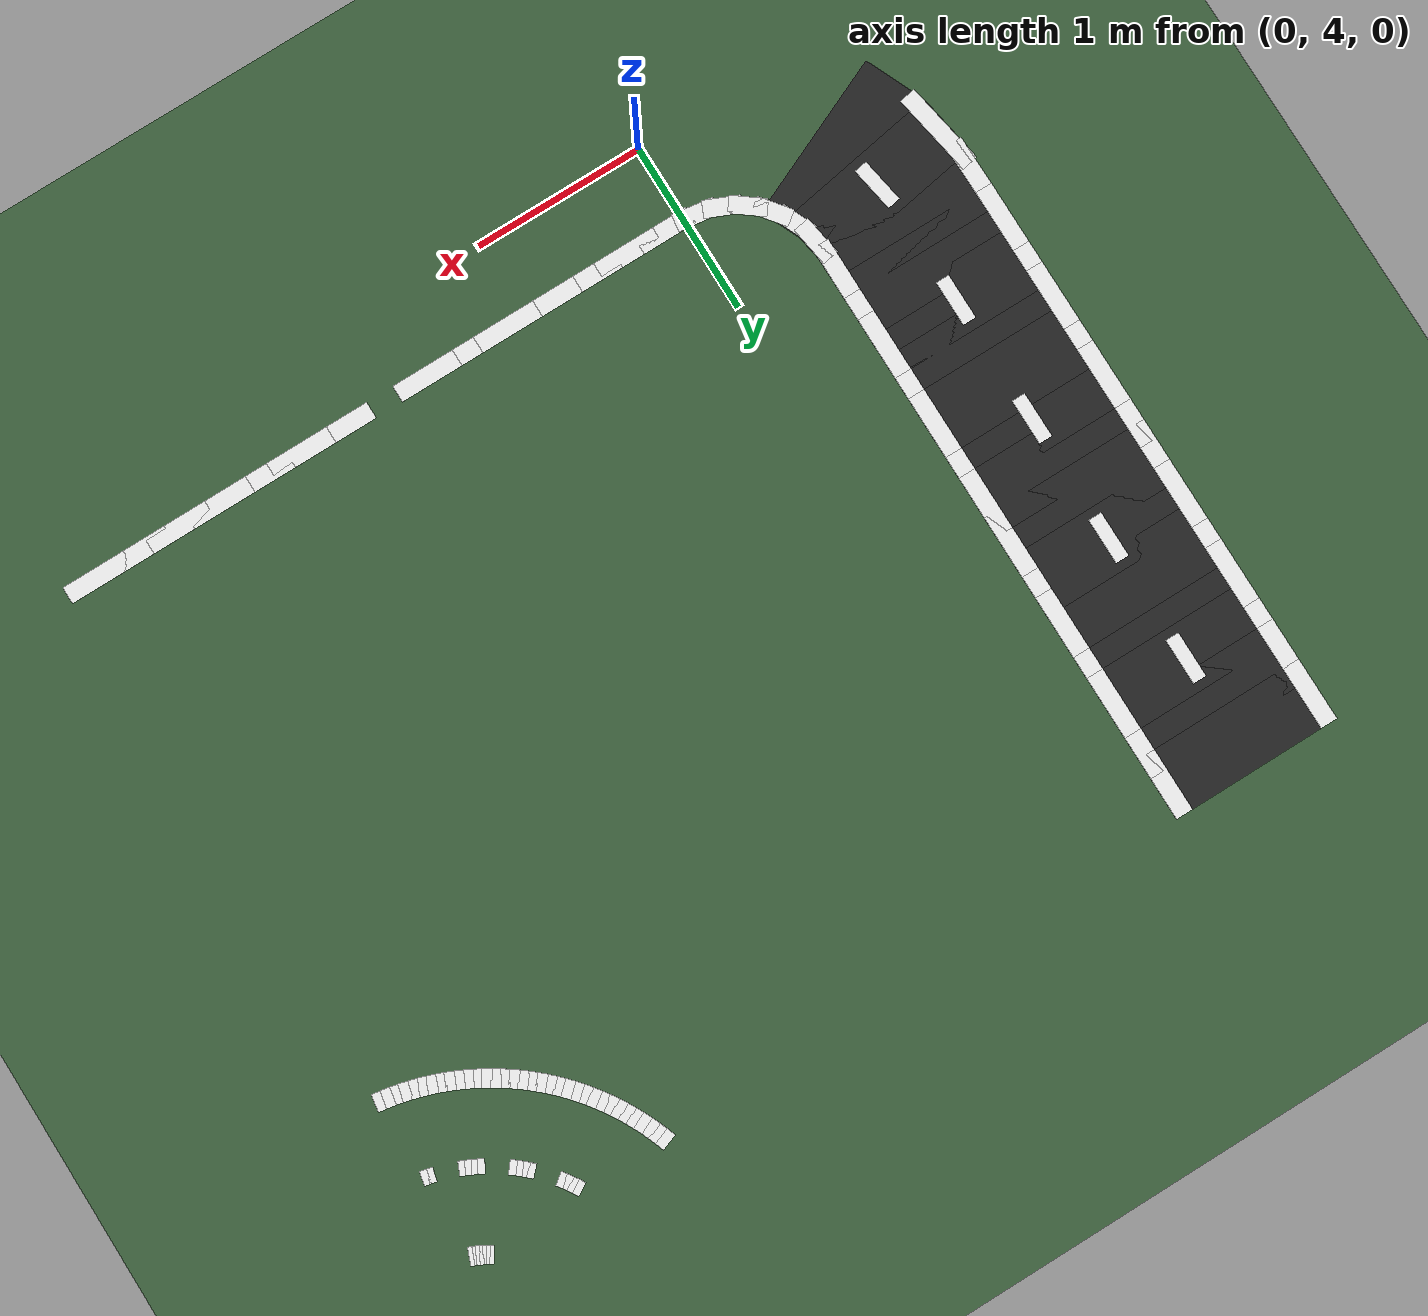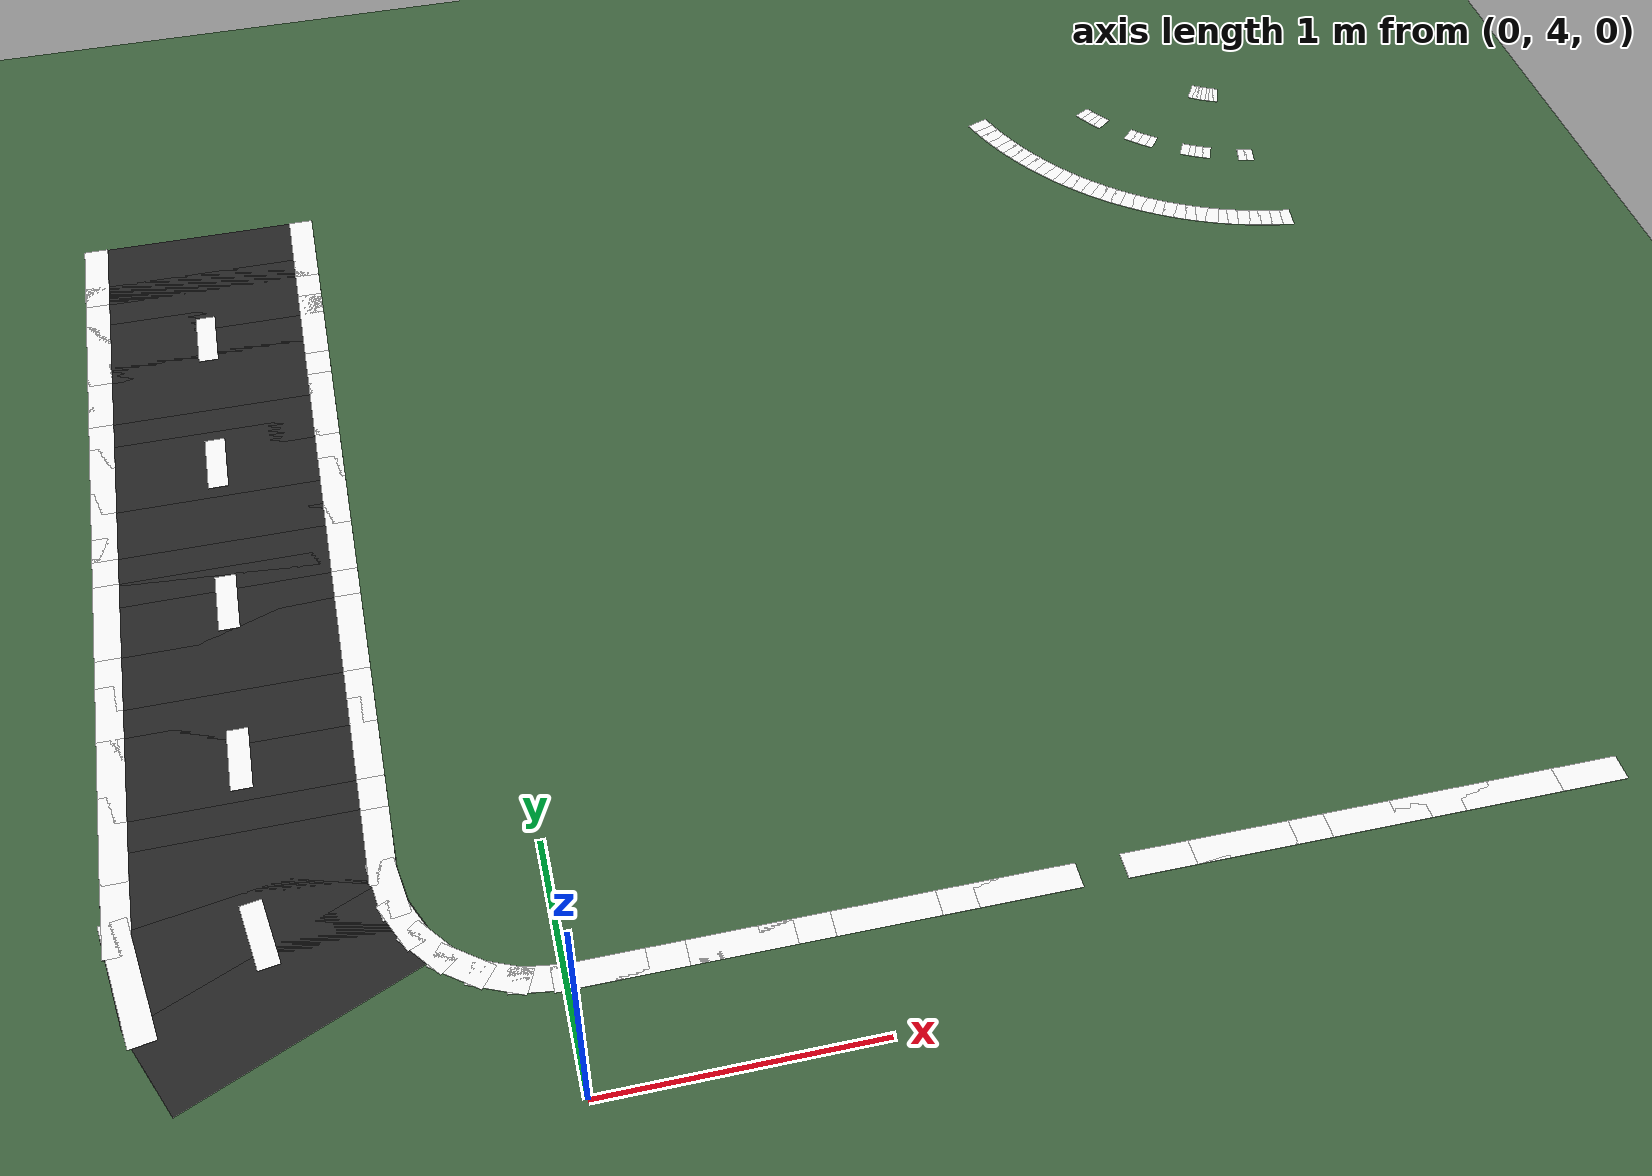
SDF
<sdf version="1.6">
 <world name="university_track">
  <model name="ground_plane">
   <static>true</static>
   <link name="link">
    <collision name="collision">
     <geometry><plane><normal>0 0 1</normal><size>200 200</size></plane></geometry>
    </collision>
    <visual name="visual">
     <geometry><plane><normal>0 0 1</normal><size>200 200</size></plane></geometry>
     <material><ambient>0.25 0.40 0.25 1</ambient><diffuse>0.25 0.40 0.25 1</diffuse></material>
    </visual>
   </link>
  </model>
  <model name="loop_61_0">
   <static>true</static>
   <pose>-1.0000 8.3353 0.0020 0 0 -1.57080</pose>
   <link name="l">
    <visual name="v">
     <geometry><box><size>0.3700 1.0000 0.0020</size></box></geometry>
     <material><ambient>0.15 0.15 0.15 1</ambient><diffuse>0.15 0.15 0.15 1</diffuse></material>
    </visual>
   </link>
  </model>
  <model name="loop_62_0">
   <static>true</static>
   <pose>-1.0000 8.0853 0.0020 0 0 -1.57080</pose>
   <link name="l">
    <visual name="v">
     <geometry><box><size>0.3700 1.0000 0.0020</size></box></geometry>
     <material><ambient>0.15 0.15 0.15 1</ambient><diffuse>0.15 0.15 0.15 1</diffuse></material>
    </visual>
   </link>
  </model>
  <model name="loop_63_0">
   <static>true</static>
   <pose>-1.0000 7.8353 0.0020 0 0 -1.57080</pose>
   <link name="l">
    <visual name="v">
     <geometry><box><size>0.3700 1.0000 0.0020</size></box></geometry>
     <material><ambient>0.15 0.15 0.15 1</ambient><diffuse>0.15 0.15 0.15 1</diffuse></material>
    </visual>
   </link>
  </model>
  <model name="loop_64_0">
   <static>true</static>
   <pose>-1.0000 7.5853 0.0020 0 0 -1.57080</pose>
   <link name="l">
    <visual name="v">
     <geometry><box><size>0.3700 1.0000 0.0020</size></box></geometry>
     <material><ambient>0.15 0.15 0.15 1</ambient><diffuse>0.15 0.15 0.15 1</diffuse></material>
    </visual>
   </link>
  </model>
  <model name="loop_65_0">
   <static>true</static>
   <pose>-1.0000 7.3353 0.0020 0 0 -1.57080</pose>
   <link name="l">
    <visual name="v">
     <geometry><box><size>0.3700 1.0000 0.0020</size></box></geometry>
     <material><ambient>0.15 0.15 0.15 1</ambient><diffuse>0.15 0.15 0.15 1</diffuse></material>
    </visual>
   </link>
  </model>
  <model name="loop_66_0">
   <static>true</static>
   <pose>-1.0000 7.0853 0.0020 0 0 -1.57080</pose>
   <link name="l">
    <visual name="v">
     <geometry><box><size>0.3700 1.0000 0.0020</size></box></geometry>
     <material><ambient>0.15 0.15 0.15 1</ambient><diffuse>0.15 0.15 0.15 1</diffuse></material>
    </visual>
   </link>
  </model>
  <model name="loop_67_0">
   <static>true</static>
   <pose>-1.0000 6.8353 0.0020 0 0 -1.57080</pose>
   <link name="l">
    <visual name="v">
     <geometry><box><size>0.3700 1.0000 0.0020</size></box></geometry>
     <material><ambient>0.15 0.15 0.15 1</ambient><diffuse>0.15 0.15 0.15 1</diffuse></material>
    </visual>
   </link>
  </model>
  <model name="loop_68_0">
   <static>true</static>
   <pose>-1.0000 6.5853 0.0020 0 0 -1.57080</pose>
   <link name="l">
    <visual name="v">
     <geometry><box><size>0.3700 1.0000 0.0020</size></box></geometry>
     <material><ambient>0.15 0.15 0.15 1</ambient><diffuse>0.15 0.15 0.15 1</diffuse></material>
    </visual>
   </link>
  </model>
  <model name="loop_69_0">
   <static>true</static>
   <pose>-1.0000 6.3353 0.0020 0 0 -1.57080</pose>
   <link name="l">
    <visual name="v">
     <geometry><box><size>0.3700 1.0000 0.0020</size></box></geometry>
     <material><ambient>0.15 0.15 0.15 1</ambient><diffuse>0.15 0.15 0.15 1</diffuse></material>
    </visual>
   </link>
  </model>
  <model name="loop_70_0">
   <static>true</static>
   <pose>-1.0000 6.0853 0.0020 0 0 -1.57080</pose>
   <link name="l">
    <visual name="v">
     <geometry><box><size>0.3700 1.0000 0.0020</size></box></geometry>
     <material><ambient>0.15 0.15 0.15 1</ambient><diffuse>0.15 0.15 0.15 1</diffuse></material>
    </visual>
   </link>
  </model>
  <model name="loop_71_0">
   <static>true</static>
   <pose>-1.0000 5.8353 0.0020 0 0 -1.57080</pose>
   <link name="l">
    <visual name="v">
     <geometry><box><size>0.3700 1.0000 0.0020</size></box></geometry>
     <material><ambient>0.15 0.15 0.15 1</ambient><diffuse>0.15 0.15 0.15 1</diffuse></material>
    </visual>
   </link>
  </model>
  <model name="loop_72_0">
   <static>true</static>
   <pose>-1.0000 5.5853 0.0020 0 0 -1.57080</pose>
   <link name="l">
    <visual name="v">
     <geometry><box><size>0.3700 1.0000 0.0020</size></box></geometry>
     <material><ambient>0.15 0.15 0.15 1</ambient><diffuse>0.15 0.15 0.15 1</diffuse></material>
    </visual>
   </link>
  </model>
  <model name="loop_73_0">
   <static>true</static>
   <pose>-1.0000 5.3353 0.0020 0 0 -1.57080</pose>
   <link name="l">
    <visual name="v">
     <geometry><box><size>0.3700 1.0000 0.0020</size></box></geometry>
     <material><ambient>0.15 0.15 0.15 1</ambient><diffuse>0.15 0.15 0.15 1</diffuse></material>
    </visual>
   </link>
  </model>
  <model name="loop_74_0">
   <static>true</static>
   <pose>-0.9995 5.0853 0.0020 0 0 -1.56664</pose>
   <link name="l">
    <visual name="v">
     <geometry><box><size>0.3700 1.0000 0.0020</size></box></geometry>
     <material><ambient>0.15 0.15 0.15 1</ambient><diffuse>0.15 0.15 0.15 1</diffuse></material>
    </visual>
   </link>
  </model>
  <model name="loop_75_0">
   <static>true</static>
   <pose>-0.9781 4.8374 0.0020 0 0 -1.40274</pose>
   <link name="l">
    <visual name="v">
     <geometry><box><size>0.3690 1.0000 0.0020</size></box></geometry>
     <material><ambient>0.15 0.15 0.15 1</ambient><diffuse>0.15 0.15 0.15 1</diffuse></material>
    </visual>
   </link>
  </model>
  <model name="loop_76_0">
   <static>true</static>
   <pose>-0.9070 4.6005 0.0020 0 0 -1.15525</pose>
   <link name="l">
    <visual name="v">
     <geometry><box><size>0.3689 1.0000 0.0020</size></box></geometry>
     <material><ambient>0.15 0.15 0.15 1</ambient><diffuse>0.15 0.15 0.15 1</diffuse></material>
    </visual>
   </link>
  </model>
  <model name="loop_le_0_0">
   <static>true</static>
   <pose>2.1250 4.4500 0.0050 0 0 0.00000</pose>
   <link name="l">
    <visual name="v">
     <geometry><box><size>0.3700 0.1000 0.0020</size></box></geometry>
     <material><ambient>1.0 1.0 1.0 1</ambient><diffuse>1.0 1.0 1.0 1</diffuse></material>
    </visual>
   </link>
  </model>
  <model name="loop_le_1_0">
   <static>true</static>
   <pose>2.3750 4.4500 0.0050 0 0 0.00000</pose>
   <link name="l">
    <visual name="v">
     <geometry><box><size>0.3700 0.1000 0.0020</size></box></geometry>
     <material><ambient>1.0 1.0 1.0 1</ambient><diffuse>1.0 1.0 1.0 1</diffuse></material>
    </visual>
   </link>
  </model>
  <model name="loop_le_2_0">
   <static>true</static>
   <pose>2.6250 4.4500 0.0050 0 0 0.00000</pose>
   <link name="l">
    <visual name="v">
     <geometry><box><size>0.3700 0.1000 0.0020</size></box></geometry>
     <material><ambient>1.0 1.0 1.0 1</ambient><diffuse>1.0 1.0 1.0 1</diffuse></material>
    </visual>
   </link>
  </model>
  <model name="loop_le_3_0">
   <static>true</static>
   <pose>2.8750 4.4500 0.0050 0 0 0.00000</pose>
   <link name="l">
    <visual name="v">
     <geometry><box><size>0.3700 0.1000 0.0020</size></box></geometry>
     <material><ambient>1.0 1.0 1.0 1</ambient><diffuse>1.0 1.0 1.0 1</diffuse></material>
    </visual>
   </link>
  </model>
  <model name="loop_le_4_0">
   <static>true</static>
   <pose>3.1250 4.4500 0.0050 0 0 0.00000</pose>
   <link name="l">
    <visual name="v">
     <geometry><box><size>0.3700 0.1000 0.0020</size></box></geometry>
     <material><ambient>1.0 1.0 1.0 1</ambient><diffuse>1.0 1.0 1.0 1</diffuse></material>
    </visual>
   </link>
  </model>
  <model name="loop_le_5_0">
   <static>true</static>
   <pose>3.3750 4.4500 0.0050 0 0 0.00000</pose>
   <link name="l">
    <visual name="v">
     <geometry><box><size>0.3700 0.1000 0.0020</size></box></geometry>
     <material><ambient>1.0 1.0 1.0 1</ambient><diffuse>1.0 1.0 1.0 1</diffuse></material>
    </visual>
   </link>
  </model>
  <model name="loop_le_6_0">
   <static>true</static>
   <pose>3.6250 4.4500 0.0050 0 0 0.00000</pose>
   <link name="l">
    <visual name="v">
     <geometry><box><size>0.3700 0.1000 0.0020</size></box></geometry>
     <material><ambient>1.0 1.0 1.0 1</ambient><diffuse>1.0 1.0 1.0 1</diffuse></material>
    </visual>
   </link>
  </model>
  <model name="loop_le_61_0">
   <static>true</static>
   <pose>-0.5500 8.3353 0.0050 0 0 -1.57080</pose>
   <link name="l">
    <visual name="v">
     <geometry><box><size>0.3700 0.1000 0.0020</size></box></geometry>
     <material><ambient>1.0 1.0 1.0 1</ambient><diffuse>1.0 1.0 1.0 1</diffuse></material>
    </visual>
   </link>
  </model>
  <model name="loop_le_62_0">
   <static>true</static>
   <pose>-0.5500 8.0853 0.0050 0 0 -1.57080</pose>
   <link name="l">
    <visual name="v">
     <geometry><box><size>0.3700 0.1000 0.0020</size></box></geometry>
     <material><ambient>1.0 1.0 1.0 1</ambient><diffuse>1.0 1.0 1.0 1</diffuse></material>
    </visual>
   </link>
  </model>
  <model name="loop_le_63_0">
   <static>true</static>
   <pose>-0.5500 7.8353 0.0050 0 0 -1.57080</pose>
   <link name="l">
    <visual name="v">
     <geometry><box><size>0.3700 0.1000 0.0020</size></box></geometry>
     <material><ambient>1.0 1.0 1.0 1</ambient><diffuse>1.0 1.0 1.0 1</diffuse></material>
    </visual>
   </link>
  </model>
  <model name="loop_le_64_0">
   <static>true</static>
   <pose>-0.5500 7.5853 0.0050 0 0 -1.57080</pose>
   <link name="l">
    <visual name="v">
     <geometry><box><size>0.3700 0.1000 0.0020</size></box></geometry>
     <material><ambient>1.0 1.0 1.0 1</ambient><diffuse>1.0 1.0 1.0 1</diffuse></material>
    </visual>
   </link>
  </model>
  <model name="loop_le_65_0">
   <static>true</static>
   <pose>-0.5500 7.3353 0.0050 0 0 -1.57080</pose>
   <link name="l">
    <visual name="v">
     <geometry><box><size>0.3700 0.1000 0.0020</size></box></geometry>
     <material><ambient>1.0 1.0 1.0 1</ambient><diffuse>1.0 1.0 1.0 1</diffuse></material>
    </visual>
   </link>
  </model>
  <model name="loop_le_66_0">
   <static>true</static>
   <pose>-0.5500 7.0853 0.0050 0 0 -1.57080</pose>
   <link name="l">
    <visual name="v">
     <geometry><box><size>0.3700 0.1000 0.0020</size></box></geometry>
     <material><ambient>1.0 1.0 1.0 1</ambient><diffuse>1.0 1.0 1.0 1</diffuse></material>
    </visual>
   </link>
  </model>
  <model name="loop_le_67_0">
   <static>true</static>
   <pose>-0.5500 6.8353 0.0050 0 0 -1.57080</pose>
   <link name="l">
    <visual name="v">
     <geometry><box><size>0.3700 0.1000 0.0020</size></box></geometry>
     <material><ambient>1.0 1.0 1.0 1</ambient><diffuse>1.0 1.0 1.0 1</diffuse></material>
    </visual>
   </link>
  </model>
  <model name="loop_le_68_0">
   <static>true</static>
   <pose>-0.5500 6.5853 0.0050 0 0 -1.57080</pose>
   <link name="l">
    <visual name="v">
     <geometry><box><size>0.3700 0.1000 0.0020</size></box></geometry>
     <material><ambient>1.0 1.0 1.0 1</ambient><diffuse>1.0 1.0 1.0 1</diffuse></material>
    </visual>
   </link>
  </model>
  <model name="loop_le_69_0">
   <static>true</static>
   <pose>-0.5500 6.3353 0.0050 0 0 -1.57080</pose>
   <link name="l">
    <visual name="v">
     <geometry><box><size>0.3700 0.1000 0.0020</size></box></geometry>
     <material><ambient>1.0 1.0 1.0 1</ambient><diffuse>1.0 1.0 1.0 1</diffuse></material>
    </visual>
   </link>
  </model>
  <model name="loop_le_70_0">
   <static>true</static>
   <pose>-0.5500 6.0853 0.0050 0 0 -1.57080</pose>
   <link name="l">
    <visual name="v">
     <geometry><box><size>0.3700 0.1000 0.0020</size></box></geometry>
     <material><ambient>1.0 1.0 1.0 1</ambient><diffuse>1.0 1.0 1.0 1</diffuse></material>
    </visual>
   </link>
  </model>
  <model name="loop_le_71_0">
   <static>true</static>
   <pose>-0.5500 5.8353 0.0050 0 0 -1.57080</pose>
   <link name="l">
    <visual name="v">
     <geometry><box><size>0.3700 0.1000 0.0020</size></box></geometry>
     <material><ambient>1.0 1.0 1.0 1</ambient><diffuse>1.0 1.0 1.0 1</diffuse></material>
    </visual>
   </link>
  </model>
  <model name="loop_le_72_0">
   <static>true</static>
   <pose>-0.5500 5.5853 0.0050 0 0 -1.57080</pose>
   <link name="l">
    <visual name="v">
     <geometry><box><size>0.3700 0.1000 0.0020</size></box></geometry>
     <material><ambient>1.0 1.0 1.0 1</ambient><diffuse>1.0 1.0 1.0 1</diffuse></material>
    </visual>
   </link>
  </model>
  <model name="loop_le_73_0">
   <static>true</static>
   <pose>-0.5500 5.3357 0.0050 0 0 -1.57080</pose>
   <link name="l">
    <visual name="v">
     <geometry><box><size>0.3687 0.1000 0.0020</size></box></geometry>
     <material><ambient>1.0 1.0 1.0 1</ambient><diffuse>1.0 1.0 1.0 1</diffuse></material>
    </visual>
   </link>
  </model>
  <model name="loop_le_74_0">
   <static>true</static>
   <pose>-0.5503 5.1051 0.0050 0 0 -1.57373</pose>
   <link name="l">
    <visual name="v">
     <geometry><box><size>0.3172 0.1000 0.0020</size></box></geometry>
     <material><ambient>1.0 1.0 1.0 1</ambient><diffuse>1.0 1.0 1.0 1</diffuse></material>
    </visual>
   </link>
  </model>
  <model name="loop_le_75_0">
   <static>true</static>
   <pose>-0.5385 4.9215 0.0050 0 0 -1.41501</pose>
   <link name="l">
    <visual name="v">
     <geometry><box><size>0.2396 0.1000 0.0020</size></box></geometry>
     <material><ambient>1.0 1.0 1.0 1</ambient><diffuse>1.0 1.0 1.0 1</diffuse></material>
    </visual>
   </link>
  </model>
  <model name="loop_le_76_0">
   <static>true</static>
   <pose>-0.4983 4.7806 0.0050 0 0 -1.15485</pose>
   <link name="l">
    <visual name="v">
     <geometry><box><size>0.2140 0.1000 0.0020</size></box></geometry>
     <material><ambient>1.0 1.0 1.0 1</ambient><diffuse>1.0 1.0 1.0 1</diffuse></material>
    </visual>
   </link>
  </model>
  <model name="loop_le_77_0">
   <static>true</static>
   <pose>-0.4286 4.6634 0.0050 0 0 -0.91249</pose>
   <link name="l">
    <visual name="v">
     <geometry><box><size>0.2106 0.1000 0.0020</size></box></geometry>
     <material><ambient>1.0 1.0 1.0 1</ambient><diffuse>1.0 1.0 1.0 1</diffuse></material>
    </visual>
   </link>
  </model>
  <model name="loop_le_78_0">
   <static>true</static>
   <pose>-0.3325 4.5683 0.0050 0 0 -0.64815</pose>
   <link name="l">
    <visual name="v">
     <geometry><box><size>0.2113 0.1000 0.0020</size></box></geometry>
     <material><ambient>1.0 1.0 1.0 1</ambient><diffuse>1.0 1.0 1.0 1</diffuse></material>
    </visual>
   </link>
  </model>
  <model name="loop_le_79_0">
   <static>true</static>
   <pose>-0.2146 4.4995 0.0050 0 0 -0.40908</pose>
   <link name="l">
    <visual name="v">
     <geometry><box><size>0.2137 0.1000 0.0020</size></box></geometry>
     <material><ambient>1.0 1.0 1.0 1</ambient><diffuse>1.0 1.0 1.0 1</diffuse></material>
    </visual>
   </link>
  </model>
  <model name="loop_le_80_0">
   <static>true</static>
   <pose>-0.0728 4.4607 0.0050 0 0 -0.14353</pose>
   <link name="l">
    <visual name="v">
     <geometry><box><size>0.2418 0.1000 0.0020</size></box></geometry>
     <material><ambient>1.0 1.0 1.0 1</ambient><diffuse>1.0 1.0 1.0 1</diffuse></material>
    </visual>
   </link>
  </model>
  <model name="loop_le_81_0">
   <static>true</static>
   <pose>0.1130 4.4497 0.0050 0 0 0.00302</pose>
   <link name="l">
    <visual name="v">
     <geometry><box><size>0.3206 0.1000 0.0020</size></box></geometry>
     <material><ambient>1.0 1.0 1.0 1</ambient><diffuse>1.0 1.0 1.0 1</diffuse></material>
    </visual>
   </link>
  </model>
  <model name="loop_le_82_0">
   <static>true</static>
   <pose>0.3450 4.4500 0.0050 0 0 0.00000</pose>
   <link name="l">
    <visual name="v">
     <geometry><box><size>0.3690 0.1000 0.0020</size></box></geometry>
     <material><ambient>1.0 1.0 1.0 1</ambient><diffuse>1.0 1.0 1.0 1</diffuse></material>
    </visual>
   </link>
  </model>
  <model name="loop_le_83_0">
   <static>true</static>
   <pose>0.5946 4.4500 0.0050 0 0 0.00000</pose>
   <link name="l">
    <visual name="v">
     <geometry><box><size>0.3700 0.1000 0.0020</size></box></geometry>
     <material><ambient>1.0 1.0 1.0 1</ambient><diffuse>1.0 1.0 1.0 1</diffuse></material>
    </visual>
   </link>
  </model>
  <model name="loop_le_84_0">
   <static>true</static>
   <pose>0.8446 4.4500 0.0050 0 0 -0.00000</pose>
   <link name="l">
    <visual name="v">
     <geometry><box><size>0.3700 0.1000 0.0020</size></box></geometry>
     <material><ambient>1.0 1.0 1.0 1</ambient><diffuse>1.0 1.0 1.0 1</diffuse></material>
    </visual>
   </link>
  </model>
  <model name="loop_le_85_0">
   <static>true</static>
   <pose>1.0946 4.4500 0.0050 0 0 0.00000</pose>
   <link name="l">
    <visual name="v">
     <geometry><box><size>0.3700 0.1000 0.0020</size></box></geometry>
     <material><ambient>1.0 1.0 1.0 1</ambient><diffuse>1.0 1.0 1.0 1</diffuse></material>
    </visual>
   </link>
  </model>
  <model name="loop_le_86_0">
   <static>true</static>
   <pose>1.3446 4.4500 0.0050 0 0 0.00000</pose>
   <link name="l">
    <visual name="v">
     <geometry><box><size>0.3700 0.1000 0.0020</size></box></geometry>
     <material><ambient>1.0 1.0 1.0 1</ambient><diffuse>1.0 1.0 1.0 1</diffuse></material>
    </visual>
   </link>
  </model>
  <model name="loop_le_87_0">
   <static>true</static>
   <pose>1.5946 4.4500 0.0050 0 0 0.00000</pose>
   <link name="l">
    <visual name="v">
     <geometry><box><size>0.3700 0.1000 0.0020</size></box></geometry>
     <material><ambient>1.0 1.0 1.0 1</ambient><diffuse>1.0 1.0 1.0 1</diffuse></material>
    </visual>
   </link>
  </model>
  <model name="loop_re_61_0">
   <static>true</static>
   <pose>-1.4500 8.3353 0.0050 0 0 -1.57080</pose>
   <link name="l">
    <visual name="v">
     <geometry><box><size>0.3700 0.1000 0.0020</size></box></geometry>
     <material><ambient>1.0 1.0 1.0 1</ambient><diffuse>1.0 1.0 1.0 1</diffuse></material>
    </visual>
   </link>
  </model>
  <model name="loop_re_62_0">
   <static>true</static>
   <pose>-1.4500 8.0853 0.0050 0 0 -1.57080</pose>
   <link name="l">
    <visual name="v">
     <geometry><box><size>0.3700 0.1000 0.0020</size></box></geometry>
     <material><ambient>1.0 1.0 1.0 1</ambient><diffuse>1.0 1.0 1.0 1</diffuse></material>
    </visual>
   </link>
  </model>
  <model name="loop_re_63_0">
   <static>true</static>
   <pose>-1.4500 7.8353 0.0050 0 0 -1.57080</pose>
   <link name="l">
    <visual name="v">
     <geometry><box><size>0.3700 0.1000 0.0020</size></box></geometry>
     <material><ambient>1.0 1.0 1.0 1</ambient><diffuse>1.0 1.0 1.0 1</diffuse></material>
    </visual>
   </link>
  </model>
  <model name="loop_re_64_0">
   <static>true</static>
   <pose>-1.4500 7.5853 0.0050 0 0 -1.57080</pose>
   <link name="l">
    <visual name="v">
     <geometry><box><size>0.3700 0.1000 0.0020</size></box></geometry>
     <material><ambient>1.0 1.0 1.0 1</ambient><diffuse>1.0 1.0 1.0 1</diffuse></material>
    </visual>
   </link>
  </model>
  <model name="loop_re_65_0">
   <static>true</static>
   <pose>-1.4500 7.3353 0.0050 0 0 -1.57080</pose>
   <link name="l">
    <visual name="v">
     <geometry><box><size>0.3700 0.1000 0.0020</size></box></geometry>
     <material><ambient>1.0 1.0 1.0 1</ambient><diffuse>1.0 1.0 1.0 1</diffuse></material>
    </visual>
   </link>
  </model>
  <model name="loop_re_66_0">
   <static>true</static>
   <pose>-1.4500 7.0853 0.0050 0 0 -1.57080</pose>
   <link name="l">
    <visual name="v">
     <geometry><box><size>0.3700 0.1000 0.0020</size></box></geometry>
     <material><ambient>1.0 1.0 1.0 1</ambient><diffuse>1.0 1.0 1.0 1</diffuse></material>
    </visual>
   </link>
  </model>
  <model name="loop_re_67_0">
   <static>true</static>
   <pose>-1.4500 6.8353 0.0050 0 0 -1.57080</pose>
   <link name="l">
    <visual name="v">
     <geometry><box><size>0.3700 0.1000 0.0020</size></box></geometry>
     <material><ambient>1.0 1.0 1.0 1</ambient><diffuse>1.0 1.0 1.0 1</diffuse></material>
    </visual>
   </link>
  </model>
  <model name="loop_re_68_0">
   <static>true</static>
   <pose>-1.4500 6.5853 0.0050 0 0 -1.57080</pose>
   <link name="l">
    <visual name="v">
     <geometry><box><size>0.3700 0.1000 0.0020</size></box></geometry>
     <material><ambient>1.0 1.0 1.0 1</ambient><diffuse>1.0 1.0 1.0 1</diffuse></material>
    </visual>
   </link>
  </model>
  <model name="loop_re_69_0">
   <static>true</static>
   <pose>-1.4500 6.3353 0.0050 0 0 -1.57080</pose>
   <link name="l">
    <visual name="v">
     <geometry><box><size>0.3700 0.1000 0.0020</size></box></geometry>
     <material><ambient>1.0 1.0 1.0 1</ambient><diffuse>1.0 1.0 1.0 1</diffuse></material>
    </visual>
   </link>
  </model>
  <model name="loop_re_70_0">
   <static>true</static>
   <pose>-1.4500 6.0853 0.0050 0 0 -1.57080</pose>
   <link name="l">
    <visual name="v">
     <geometry><box><size>0.3700 0.1000 0.0020</size></box></geometry>
     <material><ambient>1.0 1.0 1.0 1</ambient><diffuse>1.0 1.0 1.0 1</diffuse></material>
    </visual>
   </link>
  </model>
  <model name="loop_re_71_0">
   <static>true</static>
   <pose>-1.4500 5.8353 0.0050 0 0 -1.57080</pose>
   <link name="l">
    <visual name="v">
     <geometry><box><size>0.3700 0.1000 0.0020</size></box></geometry>
     <material><ambient>1.0 1.0 1.0 1</ambient><diffuse>1.0 1.0 1.0 1</diffuse></material>
    </visual>
   </link>
  </model>
  <model name="loop_re_72_0">
   <static>true</static>
   <pose>-1.4500 5.5853 0.0050 0 0 -1.57080</pose>
   <link name="l">
    <visual name="v">
     <geometry><box><size>0.3700 0.1000 0.0020</size></box></geometry>
     <material><ambient>1.0 1.0 1.0 1</ambient><diffuse>1.0 1.0 1.0 1</diffuse></material>
    </visual>
   </link>
  </model>
  <model name="loop_re_73_0">
   <static>true</static>
   <pose>-1.4500 5.3348 0.0050 0 0 -1.57079</pose>
   <link name="l">
    <visual name="v">
     <geometry><box><size>0.3713 0.1000 0.0020</size></box></geometry>
     <material><ambient>1.0 1.0 1.0 1</ambient><diffuse>1.0 1.0 1.0 1</diffuse></material>
    </visual>
   </link>
  </model>
  <model name="loop_re_74_0">
   <static>true</static>
   <pose>-1.4486 5.0655 0.0050 0 0 -1.56141</pose>
   <link name="l">
    <visual name="v">
     <geometry><box><size>0.4228 0.1000 0.0020</size></box></geometry>
     <material><ambient>1.0 1.0 1.0 1</ambient><diffuse>1.0 1.0 1.0 1</diffuse></material>
    </visual>
   </link>
  </model>
  <model name="loop_re_75_0">
   <static>true</static>
   <pose>-1.4178 4.7534 0.0050 0 0 -1.39710</pose>
   <link name="l">
    <visual name="v">
     <geometry><box><size>0.4984 0.1000 0.0020</size></box></geometry>
     <material><ambient>1.0 1.0 1.0 1</ambient><diffuse>1.0 1.0 1.0 1</diffuse></material>
    </visual>
   </link>
  </model>
  <model name="loop_cd_63_0">
   <static>true</static>
   <pose>-1.0000 7.8353 0.0050 0 0 -1.57080</pose>
   <link name="l">
    <visual name="v">
     <geometry><box><size>0.2700 0.0800 0.0020</size></box></geometry>
     <material><ambient>1.0 1.0 1.0 1</ambient><diffuse>1.0 1.0 1.0 1</diffuse></material>
    </visual>
   </link>
  </model>
  <model name="loop_cd_66_0">
   <static>true</static>
   <pose>-1.0000 7.0853 0.0050 0 0 -1.57080</pose>
   <link name="l">
    <visual name="v">
     <geometry><box><size>0.2700 0.0800 0.0020</size></box></geometry>
     <material><ambient>1.0 1.0 1.0 1</ambient><diffuse>1.0 1.0 1.0 1</diffuse></material>
    </visual>
   </link>
  </model>
  <model name="loop_cd_69_0">
   <static>true</static>
   <pose>-1.0000 6.3353 0.0050 0 0 -1.57080</pose>
   <link name="l">
    <visual name="v">
     <geometry><box><size>0.2700 0.0800 0.0020</size></box></geometry>
     <material><ambient>1.0 1.0 1.0 1</ambient><diffuse>1.0 1.0 1.0 1</diffuse></material>
    </visual>
   </link>
  </model>
  <model name="loop_cd_72_0">
   <static>true</static>
   <pose>-1.0000 5.5853 0.0050 0 0 -1.57080</pose>
   <link name="l">
    <visual name="v">
     <geometry><box><size>0.2700 0.0800 0.0020</size></box></geometry>
     <material><ambient>1.0 1.0 1.0 1</ambient><diffuse>1.0 1.0 1.0 1</diffuse></material>
    </visual>
   </link>
  </model>
  <model name="loop_cd_75_0">
   <static>true</static>
   <pose>-0.9781 4.8374 0.0050 0 0 -1.40274</pose>
   <link name="l">
    <visual name="v">
     <geometry><box><size>0.2693 0.0800 0.0020</size></box></geometry>
     <material><ambient>1.0 1.0 1.0 1</ambient><diffuse>1.0 1.0 1.0 1</diffuse></material>
    </visual>
   </link>
  </model>
  <model name="roundabout_inner_line_126">
   <static>true</static>
   <pose>3.7020 8.5378 0.0050 0 0 5.71050</pose>
   <link name="l">
    <visual name="v">
     <geometry><box><size>0.0224 0.1000 0.0020</size></box></geometry>
     <material><ambient>1.0 1.0 1.0 1</ambient><diffuse>1.0 1.0 1.0 1</diffuse></material>
    </visual>
   </link>
  </model>
  <model name="roundabout_inner_line_127">
   <static>true</static>
   <pose>3.7173 8.5283 0.0050 0 0 5.74322</pose>
   <link name="l">
    <visual name="v">
     <geometry><box><size>0.0224 0.1000 0.0020</size></box></geometry>
     <material><ambient>1.0 1.0 1.0 1</ambient><diffuse>1.0 1.0 1.0 1</diffuse></material>
    </visual>
   </link>
  </model>
  <model name="roundabout_inner_line_128">
   <static>true</static>
   <pose>3.7329 8.5193 0.0050 0 0 5.77595</pose>
   <link name="l">
    <visual name="v">
     <geometry><box><size>0.0224 0.1000 0.0020</size></box></geometry>
     <material><ambient>1.0 1.0 1.0 1</ambient><diffuse>1.0 1.0 1.0 1</diffuse></material>
    </visual>
   </link>
  </model>
  <model name="roundabout_inner_line_129">
   <static>true</static>
   <pose>3.7487 8.5108 0.0050 0 0 5.80867</pose>
   <link name="l">
    <visual name="v">
     <geometry><box><size>0.0224 0.1000 0.0020</size></box></geometry>
     <material><ambient>1.0 1.0 1.0 1</ambient><diffuse>1.0 1.0 1.0 1</diffuse></material>
    </visual>
   </link>
  </model>
  <model name="roundabout_inner_line_130">
   <static>true</static>
   <pose>3.7649 8.5029 0.0050 0 0 5.84140</pose>
   <link name="l">
    <visual name="v">
     <geometry><box><size>0.0224 0.1000 0.0020</size></box></geometry>
     <material><ambient>1.0 1.0 1.0 1</ambient><diffuse>1.0 1.0 1.0 1</diffuse></material>
    </visual>
   </link>
  </model>
  <model name="roundabout_inner_line_131">
   <static>true</static>
   <pose>3.7813 8.4954 0.0050 0 0 5.87412</pose>
   <link name="l">
    <visual name="v">
     <geometry><box><size>0.0224 0.1000 0.0020</size></box></geometry>
     <material><ambient>1.0 1.0 1.0 1</ambient><diffuse>1.0 1.0 1.0 1</diffuse></material>
    </visual>
   </link>
  </model>
  <model name="roundabout_inner_line_132">
   <static>true</static>
   <pose>3.7979 8.4886 0.0050 0 0 5.90685</pose>
   <link name="l">
    <visual name="v">
     <geometry><box><size>0.0224 0.1000 0.0020</size></box></geometry>
     <material><ambient>1.0 1.0 1.0 1</ambient><diffuse>1.0 1.0 1.0 1</diffuse></material>
    </visual>
   </link>
  </model>
  <model name="roundabout_outer_line_106">
   <static>true</static>
   <pose>2.6349 8.5116 0.0050 0 0 5.05600</pose>
   <link name="l">
    <visual name="v">
     <geometry><box><size>0.0542 0.1000 0.0020</size></box></geometry>
     <material><ambient>1.0 1.0 1.0 1</ambient><diffuse>1.0 1.0 1.0 1</diffuse></material>
    </visual>
   </link>
  </model>
  <model name="roundabout_outer_line_107">
   <static>true</static>
   <pose>2.6517 8.4672 0.0050 0 0 5.08873</pose>
   <link name="l">
    <visual name="v">
     <geometry><box><size>0.0542 0.1000 0.0020</size></box></geometry>
     <material><ambient>1.0 1.0 1.0 1</ambient><diffuse>1.0 1.0 1.0 1</diffuse></material>
    </visual>
   </link>
  </model>
  <model name="roundabout_outer_line_108">
   <static>true</static>
   <pose>2.6698 8.4233 0.0050 0 0 5.12145</pose>
   <link name="l">
    <visual name="v">
     <geometry><box><size>0.0542 0.1000 0.0020</size></box></geometry>
     <material><ambient>1.0 1.0 1.0 1</ambient><diffuse>1.0 1.0 1.0 1</diffuse></material>
    </visual>
   </link>
  </model>
  <model name="roundabout_outer_line_109">
   <static>true</static>
   <pose>2.6894 8.3801 0.0050 0 0 5.15418</pose>
   <link name="l">
    <visual name="v">
     <geometry><box><size>0.0542 0.1000 0.0020</size></box></geometry>
     <material><ambient>1.0 1.0 1.0 1</ambient><diffuse>1.0 1.0 1.0 1</diffuse></material>
    </visual>
   </link>
  </model>
  <model name="roundabout_outer_line_110">
   <static>true</static>
   <pose>2.7104 8.3376 0.0050 0 0 5.18690</pose>
   <link name="l">
    <visual name="v">
     <geometry><box><size>0.0542 0.1000 0.0020</size></box></geometry>
     <material><ambient>1.0 1.0 1.0 1</ambient><diffuse>1.0 1.0 1.0 1</diffuse></material>
    </visual>
   </link>
  </model>
  <model name="roundabout_outer_line_111">
   <static>true</static>
   <pose>2.7327 8.2957 0.0050 0 0 5.21963</pose>
   <link name="l">
    <visual name="v">
     <geometry><box><size>0.0542 0.1000 0.0020</size></box></geometry>
     <material><ambient>1.0 1.0 1.0 1</ambient><diffuse>1.0 1.0 1.0 1</diffuse></material>
    </visual>
   </link>
  </model>
  <model name="roundabout_outer_line_112">
   <static>true</static>
   <pose>2.7565 8.2547 0.0050 0 0 5.25235</pose>
   <link name="l">
    <visual name="v">
     <geometry><box><size>0.0542 0.1000 0.0020</size></box></geometry>
     <material><ambient>1.0 1.0 1.0 1</ambient><diffuse>1.0 1.0 1.0 1</diffuse></material>
    </visual>
   </link>
  </model>
  <model name="roundabout_outer_line_113">
   <static>true</static>
   <pose>2.7815 8.2144 0.0050 0 0 5.28508</pose>
   <link name="l">
    <visual name="v">
     <geometry><box><size>0.0542 0.1000 0.0020</size></box></geometry>
     <material><ambient>1.0 1.0 1.0 1</ambient><diffuse>1.0 1.0 1.0 1</diffuse></material>
    </visual>
   </link>
  </model>
  <model name="roundabout_outer_line_114">
   <static>true</static>
   <pose>2.8079 8.1749 0.0050 0 0 5.31780</pose>
   <link name="l">
    <visual name="v">
     <geometry><box><size>0.0542 0.1000 0.0020</size></box></geometry>
     <material><ambient>1.0 1.0 1.0 1</ambient><diffuse>1.0 1.0 1.0 1</diffuse></material>
    </visual>
   </link>
  </model>
  <model name="roundabout_outer_line_115">
   <static>true</static>
   <pose>2.8355 8.1364 0.0050 0 0 5.35052</pose>
   <link name="l">
    <visual name="v">
     <geometry><box><size>0.0542 0.1000 0.0020</size></box></geometry>
     <material><ambient>1.0 1.0 1.0 1</ambient><diffuse>1.0 1.0 1.0 1</diffuse></material>
    </visual>
   </link>
  </model>
  <model name="roundabout_outer_line_116">
   <static>true</static>
   <pose>2.8644 8.0987 0.0050 0 0 5.38325</pose>
   <link name="l">
    <visual name="v">
     <geometry><box><size>0.0542 0.1000 0.0020</size></box></geometry>
     <material><ambient>1.0 1.0 1.0 1</ambient><diffuse>1.0 1.0 1.0 1</diffuse></material>
    </visual>
   </link>
  </model>
  <model name="roundabout_outer_line_117">
   <static>true</static>
   <pose>2.8945 8.0620 0.0050 0 0 5.41597</pose>
   <link name="l">
    <visual name="v">
     <geometry><box><size>0.0542 0.1000 0.0020</size></box></geometry>
     <material><ambient>1.0 1.0 1.0 1</ambient><diffuse>1.0 1.0 1.0 1</diffuse></material>
    </visual>
   </link>
  </model>
  <model name="roundabout_outer_line_118">
   <static>true</static>
   <pose>2.9258 8.0264 0.0050 0 0 5.44870</pose>
   <link name="l">
    <visual name="v">
     <geometry><box><size>0.0542 0.1000 0.0020</size></box></geometry>
     <material><ambient>1.0 1.0 1.0 1</ambient><diffuse>1.0 1.0 1.0 1</diffuse></material>
    </visual>
   </link>
  </model>
  <model name="roundabout_outer_line_119">
   <static>true</static>
   <pose>2.9582 7.9917 0.0050 0 0 5.48142</pose>
   <link name="l">
    <visual name="v">
     <geometry><box><size>0.0542 0.1000 0.0020</size></box></geometry>
     <material><ambient>1.0 1.0 1.0 1</ambient><diffuse>1.0 1.0 1.0 1</diffuse></material>
    </visual>
   </link>
  </model>
  <model name="roundabout_outer_line_120">
   <static>true</static>
   <pose>2.9917 7.9582 0.0050 0 0 5.51415</pose>
   <link name="l">
    <visual name="v">
     <geometry><box><size>0.0542 0.1000 0.0020</size></box></geometry>
     <material><ambient>1.0 1.0 1.0 1</ambient><diffuse>1.0 1.0 1.0 1</diffuse></material>
    </visual>
   </link>
  </model>
  <model name="roundabout_outer_line_121">
   <static>true</static>
   <pose>3.0264 7.9258 0.0050 0 0 5.54687</pose>
   <link name="l">
    <visual name="v">
     <geometry><box><size>0.0542 0.1000 0.0020</size></box></geometry>
     <material><ambient>1.0 1.0 1.0 1</ambient><diffuse>1.0 1.0 1.0 1</diffuse></material>
    </visual>
   </link>
  </model>
  <model name="roundabout_outer_line_122">
   <static>true</static>
   <pose>3.0620 7.8945 0.0050 0 0 5.57960</pose>
   <link name="l">
    <visual name="v">
     <geometry><box><size>0.0542 0.1000 0.0020</size></box></geometry>
     <material><ambient>1.0 1.0 1.0 1</ambient><diffuse>1.0 1.0 1.0 1</diffuse></material>
    </visual>
   </link>
  </model>
  <model name="roundabout_outer_line_123">
   <static>true</static>
   <pose>3.0987 7.8644 0.0050 0 0 5.61232</pose>
   <link name="l">
    <visual name="v">
     <geometry><box><size>0.0542 0.1000 0.0020</size></box></geometry>
     <material><ambient>1.0 1.0 1.0 1</ambient><diffuse>1.0 1.0 1.0 1</diffuse></material>
    </visual>
   </link>
  </model>
  <model name="roundabout_outer_line_124">
   <static>true</static>
   <pose>3.1364 7.8355 0.0050 0 0 5.64505</pose>
   <link name="l">
    <visual name="v">
     <geometry><box><size>0.0542 0.1000 0.0020</size></box></geometry>
     <material><ambient>1.0 1.0 1.0 1</ambient><diffuse>1.0 1.0 1.0 1</diffuse></material>
    </visual>
   </link>
  </model>
  <model name="roundabout_outer_line_125">
   <static>true</static>
   <pose>3.1749 7.8079 0.0050 0 0 5.67777</pose>
   <link name="l">
    <visual name="v">
     <geometry><box><size>0.0542 0.1000 0.0020</size></box></geometry>
     <material><ambient>1.0 1.0 1.0 1</ambient><diffuse>1.0 1.0 1.0 1</diffuse></material>
    </visual>
   </link>
  </model>
  <model name="roundabout_outer_line_126">
   <static>true</static>
   <pose>3.2144 7.7815 0.0050 0 0 5.71050</pose>
   <link name="l">
    <visual name="v">
     <geometry><box><size>0.0542 0.1000 0.0020</size></box></geometry>
     <material><ambient>1.0 1.0 1.0 1</ambient><diffuse>1.0 1.0 1.0 1</diffuse></material>
    </visual>
   </link>
  </model>
  <model name="roundabout_outer_line_127">
   <static>true</static>
   <pose>3.2547 7.7565 0.0050 0 0 5.74322</pose>
   <link name="l">
    <visual name="v">
     <geometry><box><size>0.0542 0.1000 0.0020</size></box></geometry>
     <material><ambient>1.0 1.0 1.0 1</ambient><diffuse>1.0 1.0 1.0 1</diffuse></material>
    </visual>
   </link>
  </model>
  <model name="roundabout_outer_line_128">
   <static>true</static>
   <pose>3.2957 7.7327 0.0050 0 0 5.77595</pose>
   <link name="l">
    <visual name="v">
     <geometry><box><size>0.0542 0.1000 0.0020</size></box></geometry>
     <material><ambient>1.0 1.0 1.0 1</ambient><diffuse>1.0 1.0 1.0 1</diffuse></material>
    </visual>
   </link>
  </model>
  <model name="roundabout_outer_line_129">
   <static>true</static>
   <pose>3.3376 7.7104 0.0050 0 0 5.80867</pose>
   <link name="l">
    <visual name="v">
     <geometry><box><size>0.0542 0.1000 0.0020</size></box></geometry>
     <material><ambient>1.0 1.0 1.0 1</ambient><diffuse>1.0 1.0 1.0 1</diffuse></material>
    </visual>
   </link>
  </model>
  <model name="roundabout_outer_line_130">
   <static>true</static>
   <pose>3.3801 7.6894 0.0050 0 0 5.84140</pose>
   <link name="l">
    <visual name="v">
     <geometry><box><size>0.0542 0.1000 0.0020</size></box></geometry>
     <material><ambient>1.0 1.0 1.0 1</ambient><diffuse>1.0 1.0 1.0 1</diffuse></material>
    </visual>
   </link>
  </model>
  <model name="roundabout_outer_line_131">
   <static>true</static>
   <pose>3.4233 7.6698 0.0050 0 0 5.87412</pose>
   <link name="l">
    <visual name="v">
     <geometry><box><size>0.0542 0.1000 0.0020</size></box></geometry>
     <material><ambient>1.0 1.0 1.0 1</ambient><diffuse>1.0 1.0 1.0 1</diffuse></material>
    </visual>
   </link>
  </model>
  <model name="roundabout_outer_line_132">
   <static>true</static>
   <pose>3.4672 7.6517 0.0050 0 0 5.90685</pose>
   <link name="l">
    <visual name="v">
     <geometry><box><size>0.0542 0.1000 0.0020</size></box></geometry>
     <material><ambient>1.0 1.0 1.0 1</ambient><diffuse>1.0 1.0 1.0 1</diffuse></material>
    </visual>
   </link>
  </model>
  <model name="roundabout_outer_line_133">
   <static>true</static>
   <pose>3.5116 7.6349 0.0050 0 0 5.93957</pose>
   <link name="l">
    <visual name="v">
     <geometry><box><size>0.0542 0.1000 0.0020</size></box></geometry>
     <material><ambient>1.0 1.0 1.0 1</ambient><diffuse>1.0 1.0 1.0 1</diffuse></material>
    </visual>
   </link>
  </model>
  <model name="roundabout_outer_line_134">
   <static>true</static>
   <pose>3.5565 7.6197 0.0050 0 0 5.97230</pose>
   <link name="l">
    <visual name="v">
     <geometry><box><size>0.0542 0.1000 0.0020</size></box></geometry>
     <material><ambient>1.0 1.0 1.0 1</ambient><diffuse>1.0 1.0 1.0 1</diffuse></material>
    </visual>
   </link>
  </model>
  <model name="roundabout_outer_line_135">
   <static>true</static>
   <pose>3.6019 7.6059 0.0050 0 0 6.00502</pose>
   <link name="l">
    <visual name="v">
     <geometry><box><size>0.0542 0.1000 0.0020</size></box></geometry>
     <material><ambient>1.0 1.0 1.0 1</ambient><diffuse>1.0 1.0 1.0 1</diffuse></material>
    </visual>
   </link>
  </model>
  <model name="roundabout_outer_line_136">
   <static>true</static>
   <pose>3.6477 7.5936 0.0050 0 0 6.03775</pose>
   <link name="l">
    <visual name="v">
     <geometry><box><size>0.0542 0.1000 0.0020</size></box></geometry>
     <material><ambient>1.0 1.0 1.0 1</ambient><diffuse>1.0 1.0 1.0 1</diffuse></material>
    </visual>
   </link>
  </model>
  <model name="roundabout_outer_line_137">
   <static>true</static>
   <pose>3.6939 7.5829 0.0050 0 0 6.07047</pose>
   <link name="l">
    <visual name="v">
     <geometry><box><size>0.0542 0.1000 0.0020</size></box></geometry>
     <material><ambient>1.0 1.0 1.0 1</ambient><diffuse>1.0 1.0 1.0 1</diffuse></material>
    </visual>
   </link>
  </model>
  <model name="roundabout_outer_line_138">
   <static>true</static>
   <pose>3.7405 7.5736 0.0050 0 0 6.10320</pose>
   <link name="l">
    <visual name="v">
     <geometry><box><size>0.0542 0.1000 0.0020</size></box></geometry>
     <material><ambient>1.0 1.0 1.0 1</ambient><diffuse>1.0 1.0 1.0 1</diffuse></material>
    </visual>
   </link>
  </model>
  <model name="roundabout_outer_line_139">
   <static>true</static>
   <pose>3.7873 7.5659 0.0050 0 0 6.13592</pose>
   <link name="l">
    <visual name="v">
     <geometry><box><size>0.0542 0.1000 0.0020</size></box></geometry>
     <material><ambient>1.0 1.0 1.0 1</ambient><diffuse>1.0 1.0 1.0 1</diffuse></material>
    </visual>
   </link>
  </model>
  <model name="roundabout_center_dash_112">
   <static>true</static>
   <pose>3.1424 8.4860 0.0060 0 0 5.25235</pose>
   <link name="l">
    <visual name="v">
     <geometry><box><size>0.0383 0.0800 0.0020</size></box></geometry>
     <material><ambient>1.0 1.0 1.0 1</ambient><diffuse>1.0 1.0 1.0 1</diffuse></material>
    </visual>
   </link>
  </model>
  <model name="roundabout_center_dash_113">
   <static>true</static>
   <pose>3.1597 8.4582 0.0060 0 0 5.28508</pose>
   <link name="l">
    <visual name="v">
     <geometry><box><size>0.0383 0.0800 0.0020</size></box></geometry>
     <material><ambient>1.0 1.0 1.0 1</ambient><diffuse>1.0 1.0 1.0 1</diffuse></material>
    </visual>
   </link>
  </model>
  <model name="roundabout_center_dash_114">
   <static>true</static>
   <pose>3.1778 8.4310 0.0060 0 0 5.31780</pose>
   <link name="l">
    <visual name="v">
     <geometry><box><size>0.0383 0.0800 0.0020</size></box></geometry>
     <material><ambient>1.0 1.0 1.0 1</ambient><diffuse>1.0 1.0 1.0 1</diffuse></material>
    </visual>
   </link>
  </model>
  <model name="roundabout_center_dash_115">
   <static>true</static>
   <pose>3.1969 8.4044 0.0060 0 0 5.35052</pose>
   <link name="l">
    <visual name="v">
     <geometry><box><size>0.0383 0.0800 0.0020</size></box></geometry>
     <material><ambient>1.0 1.0 1.0 1</ambient><diffuse>1.0 1.0 1.0 1</diffuse></material>
    </visual>
   </link>
  </model>
  <model name="roundabout_center_dash_120">
   <static>true</static>
   <pose>3.3047 8.2815 0.0060 0 0 5.51415</pose>
   <link name="l">
    <visual name="v">
     <geometry><box><size>0.0383 0.0800 0.0020</size></box></geometry>
     <material><ambient>1.0 1.0 1.0 1</ambient><diffuse>1.0 1.0 1.0 1</diffuse></material>
    </visual>
   </link>
  </model>
  <model name="roundabout_center_dash_121">
   <static>true</static>
   <pose>3.3285 8.2591 0.0060 0 0 5.54687</pose>
   <link name="l">
    <visual name="v">
     <geometry><box><size>0.0383 0.0800 0.0020</size></box></geometry>
     <material><ambient>1.0 1.0 1.0 1</ambient><diffuse>1.0 1.0 1.0 1</diffuse></material>
    </visual>
   </link>
  </model>
  <model name="roundabout_center_dash_122">
   <static>true</static>
   <pose>3.3531 8.2376 0.0060 0 0 5.57960</pose>
   <link name="l">
    <visual name="v">
     <geometry><box><size>0.0383 0.0800 0.0020</size></box></geometry>
     <material><ambient>1.0 1.0 1.0 1</ambient><diffuse>1.0 1.0 1.0 1</diffuse></material>
    </visual>
   </link>
  </model>
  <model name="roundabout_center_dash_123">
   <static>true</static>
   <pose>3.3784 8.2168 0.0060 0 0 5.61232</pose>
   <link name="l">
    <visual name="v">
     <geometry><box><size>0.0383 0.0800 0.0020</size></box></geometry>
     <material><ambient>1.0 1.0 1.0 1</ambient><diffuse>1.0 1.0 1.0 1</diffuse></material>
    </visual>
   </link>
  </model>
  <model name="roundabout_center_dash_128">
   <static>true</static>
   <pose>3.5143 8.1260 0.0060 0 0 5.77595</pose>
   <link name="l">
    <visual name="v">
     <geometry><box><size>0.0383 0.0800 0.0020</size></box></geometry>
     <material><ambient>1.0 1.0 1.0 1</ambient><diffuse>1.0 1.0 1.0 1</diffuse></material>
    </visual>
   </link>
  </model>
  <model name="roundabout_center_dash_129">
   <static>true</static>
   <pose>3.5432 8.1106 0.0060 0 0 5.80867</pose>
   <link name="l">
    <visual name="v">
     <geometry><box><size>0.0383 0.0800 0.0020</size></box></geometry>
     <material><ambient>1.0 1.0 1.0 1</ambient><diffuse>1.0 1.0 1.0 1</diffuse></material>
    </visual>
   </link>
  </model>
  <model name="roundabout_center_dash_130">
   <static>true</static>
   <pose>3.5725 8.0961 0.0060 0 0 5.84140</pose>
   <link name="l">
    <visual name="v">
     <geometry><box><size>0.0383 0.0800 0.0020</size></box></geometry>
     <material><ambient>1.0 1.0 1.0 1</ambient><diffuse>1.0 1.0 1.0 1</diffuse></material>
    </visual>
   </link>
  </model>
  <model name="roundabout_center_dash_131">
   <static>true</static>
   <pose>3.6023 8.0826 0.0060 0 0 5.87412</pose>
   <link name="l">
    <visual name="v">
     <geometry><box><size>0.0383 0.0800 0.0020</size></box></geometry>
     <material><ambient>1.0 1.0 1.0 1</ambient><diffuse>1.0 1.0 1.0 1</diffuse></material>
    </visual>
   </link>
  </model>
  <model name="roundabout_center_dash_136">
   <static>true</static>
   <pose>3.7571 8.0301 0.0060 0 0 6.03775</pose>
   <link name="l">
    <visual name="v">
     <geometry><box><size>0.0383 0.0800 0.0020</size></box></geometry>
     <material><ambient>1.0 1.0 1.0 1</ambient><diffuse>1.0 1.0 1.0 1</diffuse></material>
    </visual>
   </link>
  </model>
  <model name="roundabout_center_dash_137">
   <static>true</static>
   <pose>3.7889 8.0227 0.0060 0 0 6.07047</pose>
   <link name="l">
    <visual name="v">
     <geometry><box><size>0.0383 0.0800 0.0020</size></box></geometry>
     <material><ambient>1.0 1.0 1.0 1</ambient><diffuse>1.0 1.0 1.0 1</diffuse></material>
    </visual>
   </link>
  </model>
 </world>
</sdf>
